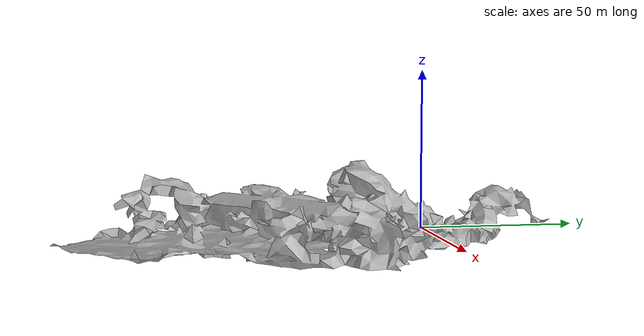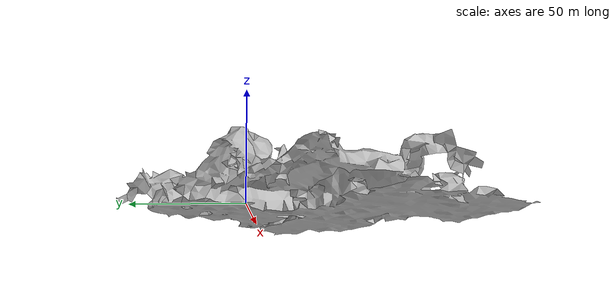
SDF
<?xml version="1.0" ?>
<sdf version='1.5'>
 <model name="upb12">

    <pose>0 0 0.0 0 0 0</pose>

    <self_collide>false</self_collide>

    <static>true</static>
    <link name="upb12_link">
          <pose frame=''>0 0 0 0 -0 0</pose>
          <collision name="upb12_collisions">
            <geometry>
              <mesh>
                  <scale>1 1 1</scale>
                    <uri>model://upb12/meshes/collision.obj</uri>
              </mesh>
            </geometry>
            <surface>
              <contact>
                <ode>
                  <min_depth>0.001</min_depth>
                  <max_vel>0</max_vel>
                </ode>
              </contact>
              <friction>
                <ode/>
              </friction>
            </surface>
          </collision>
          <visual name="upb12_visual">
            <geometry>
              <mesh>
                  <scale>1 1 1</scale>
                    <uri>model://upb12/meshes/mesh.obj</uri>
              </mesh>
            </geometry>
          </visual>
          <gravity>1</gravity>
        </link>
</model>
</sdf>
